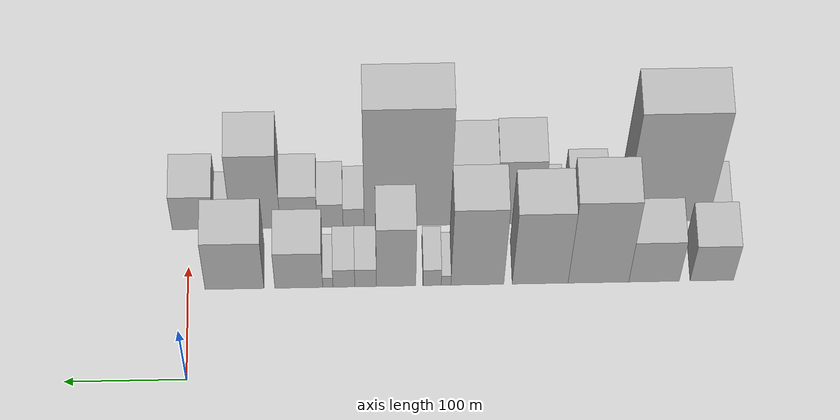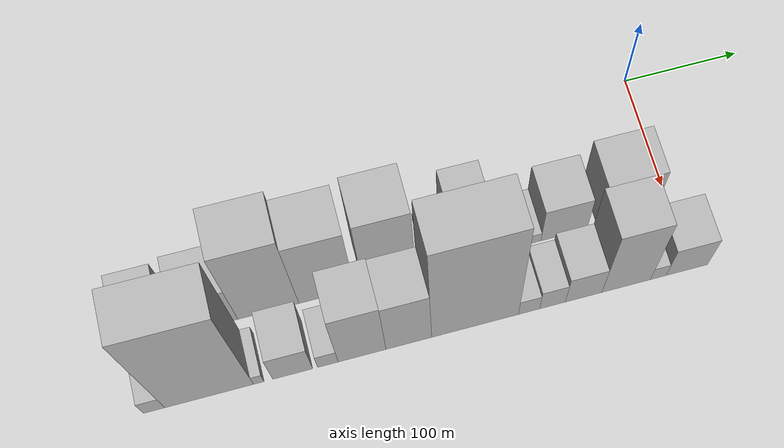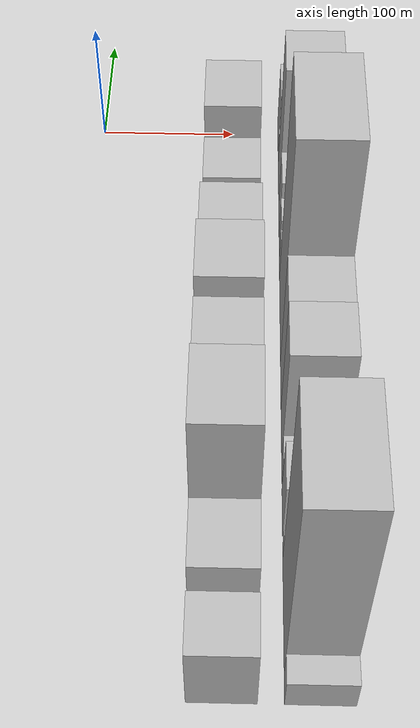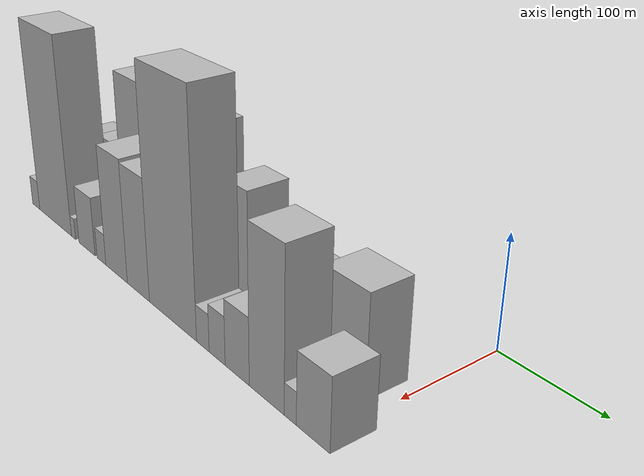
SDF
<sdf version="1.6">
 <world name="default">
  <model name="building_1">
   <static>1</static>
   <pose>100.0000 -432.0484 0 0.000000 0.000000 0.000000</pose>
   <link name="link">
    <pose>0 0 33.00 0 0 0</pose>
    <collision name="collision"><geometry><box><size>40.0000 35.9032 66.0000</size></box></geometry></collision>
    <visual name="visual">
     <cast_shadows>0</cast_shadows>
     <geometry><box><size>40.0000 35.9032 66.0000</size></box></geometry>
     <material>
      <script>
       <uri>model://HANNAS_wall/materials/scripts</uri>
       <uri>model://HANNAS_wall/materials/textures</uri>
       <name>vrc/HANNAS_wall</name>
      </script>
     </material>
    </visual>
   </link>
  </model>
  <model name="building_2">
   <static>1</static>
   <pose>100.0000 -384.2388 0 0.000000 0.000000 0.000000</pose>
   <link name="link">
    <pose>0 0 37.50 0 0 0</pose>
    <collision name="collision"><geometry><box><size>40.0000 41.7160 75.0000</size></box></geometry></collision>
    <visual name="visual">
     <cast_shadows>0</cast_shadows>
     <geometry><box><size>40.0000 41.7160 75.0000</size></box></geometry>
     <material>
      <script>
       <uri>model://HANNAS_wall/materials/scripts</uri>
       <uri>model://HANNAS_wall/materials/textures</uri>
       <name>vrc/HANNAS_wall</name>
      </script>
     </material>
    </visual>
   </link>
  </model>
  <model name="building_3">
   <static>1</static>
   <pose>100.0000 -338.3194 0 0.000000 0.000000 0.000000</pose>
   <link name="link">
    <pose>0 0 75.00 0 0 0</pose>
    <collision name="collision"><geometry><box><size>40.0000 50.1228 150.0000</size></box></geometry></collision>
    <visual name="visual">
     <cast_shadows>0</cast_shadows>
     <geometry><box><size>40.0000 50.1228 150.0000</size></box></geometry>
     <material>
      <script>
       <uri>model://HANNAS_wall/materials/scripts</uri>
       <uri>model://HANNAS_wall/materials/textures</uri>
       <name>vrc/HANNAS_wall</name>
      </script>
     </material>
    </visual>
   </link>
  </model>
  <model name="building_4">
   <static>1</static>
   <pose>100.0000 -290.1921 0 0.000000 0.000000 0.000000</pose>
   <link name="link">
    <pose>0 0 66.00 0 0 0</pose>
    <collision name="collision"><geometry><box><size>40.0000 46.1318 132.0000</size></box></geometry></collision>
    <visual name="visual">
     <cast_shadows>0</cast_shadows>
     <geometry><box><size>40.0000 46.1318 132.0000</size></box></geometry>
     <material>
      <script>
       <uri>model://HANNAS_wall/materials/scripts</uri>
       <uri>model://HANNAS_wall/materials/textures</uri>
       <name>vrc/HANNAS_wall</name>
      </script>
     </material>
    </visual>
   </link>
  </model>
  <model name="building_5">
   <static>1</static>
   <pose>100.0000 -238.3165 0 0.000000 0.000000 0.000000</pose>
   <link name="link">
    <pose>0 0 70.50 0 0 0</pose>
    <collision name="collision"><geometry><box><size>40.0000 43.6195 141.0000</size></box></geometry></collision>
    <visual name="visual">
     <cast_shadows>0</cast_shadows>
     <geometry><box><size>40.0000 43.6195 141.0000</size></box></geometry>
     <material>
      <script>
       <uri>model://HANNAS_wall/materials/scripts</uri>
       <uri>model://HANNAS_wall/materials/textures</uri>
       <name>vrc/HANNAS_wall</name>
      </script>
     </material>
    </visual>
   </link>
  </model>
  <model name="building_6">
   <static>1</static>
   <pose>100.0000 -212.5208 0 0.000000 0.000000 0.000000</pose>
   <link name="link">
    <pose>0 0 9.00 0 0 0</pose>
    <collision name="collision"><geometry><box><size>40.0000 7.9718 18.0000</size></box></geometry></collision>
    <visual name="visual">
     <cast_shadows>0</cast_shadows>
     <geometry><box><size>40.0000 7.9718 18.0000</size></box></geometry>
     <material>
      <script>
       <uri>model://HANNAS_wall/materials/scripts</uri>
       <uri>model://HANNAS_wall/materials/textures</uri>
       <name>vrc/HANNAS_wall</name>
      </script>
     </material>
    </visual>
   </link>
  </model>
  <model name="building_7">
   <static>1</static>
   <pose>100.0000 -200.9967 0 0.000000 0.000000 0.000000</pose>
   <link name="link">
    <pose>0 0 15.00 0 0 0</pose>
    <collision name="collision"><geometry><box><size>40.0000 15.0765 30.0000</size></box></geometry></collision>
    <visual name="visual">
     <cast_shadows>0</cast_shadows>
     <geometry><box><size>40.0000 15.0765 30.0000</size></box></geometry>
     <material>
      <script>
       <uri>model://HANNAS_wall/materials/scripts</uri>
       <uri>model://HANNAS_wall/materials/textures</uri>
       <name>vrc/HANNAS_wall</name>
      </script>
     </material>
    </visual>
   </link>
  </model>
  <model name="building_8">
   <static>1</static>
   <pose>100.0000 -171.2387 0 0.000000 0.000000 0.000000</pose>
   <link name="link">
    <pose>0 0 54.00 0 0 0</pose>
    <collision name="collision"><geometry><box><size>40.0000 32.4394 108.0000</size></box></geometry></collision>
    <visual name="visual">
     <cast_shadows>0</cast_shadows>
     <geometry><box><size>40.0000 32.4394 108.0000</size></box></geometry>
     <material>
      <script>
       <uri>model://HANNAS_wall/materials/scripts</uri>
       <uri>model://HANNAS_wall/materials/textures</uri>
       <name>vrc/HANNAS_wall</name>
      </script>
     </material>
    </visual>
   </link>
  </model>
  <model name="building_9">
   <static>1</static>
   <pose>100.0000 -146.1011 0 0.000000 0.000000 0.000000</pose>
   <link name="link">
    <pose>0 0 16.50 0 0 0</pose>
    <collision name="collision"><geometry><box><size>40.0000 17.8359 33.0000</size></box></geometry></collision>
    <visual name="visual">
     <cast_shadows>0</cast_shadows>
     <geometry><box><size>40.0000 17.8359 33.0000</size></box></geometry>
     <material>
      <script>
       <uri>model://HANNAS_wall/materials/scripts</uri>
       <uri>model://HANNAS_wall/materials/textures</uri>
       <name>vrc/HANNAS_wall</name>
      </script>
     </material>
    </visual>
   </link>
  </model>
  <model name="building_10">
   <static>1</static>
   <pose>100.0000 -128.2102 0 0.000000 0.000000 0.000000</pose>
   <link name="link">
    <pose>0 0 16.50 0 0 0</pose>
    <collision name="collision"><geometry><box><size>40.0000 17.9459 33.0000</size></box></geometry></collision>
    <visual name="visual">
     <cast_shadows>0</cast_shadows>
     <geometry><box><size>40.0000 17.9459 33.0000</size></box></geometry>
     <material>
      <script>
       <uri>model://HANNAS_wall/materials/scripts</uri>
       <uri>model://HANNAS_wall/materials/textures</uri>
       <name>vrc/HANNAS_wall</name>
      </script>
     </material>
    </visual>
   </link>
  </model>
  <model name="building_11">
   <static>1</static>
   <pose>100.0000 -115.0051 0 0.000000 0.000000 0.000000</pose>
   <link name="link">
    <pose>0 0 9.00 0 0 0</pose>
    <collision name="collision"><geometry><box><size>40.0000 8.4643 18.0000</size></box></geometry></collision>
    <visual name="visual">
     <cast_shadows>0</cast_shadows>
     <geometry><box><size>40.0000 8.4643 18.0000</size></box></geometry>
     <material>
      <script>
       <uri>model://HANNAS_wall/materials/scripts</uri>
       <uri>model://HANNAS_wall/materials/textures</uri>
       <name>vrc/HANNAS_wall</name>
      </script>
     </material>
    </visual>
   </link>
  </model>
  <model name="building_12">
   <static>1</static>
   <pose>100.0000 -91.0489 0 0.000000 0.000000 0.000000</pose>
   <link name="link">
    <pose>0 0 33.00 0 0 0</pose>
    <collision name="collision"><geometry><box><size>40.0000 39.4481 66.0000</size></box></geometry></collision>
    <visual name="visual">
     <cast_shadows>0</cast_shadows>
     <geometry><box><size>40.0000 39.4481 66.0000</size></box></geometry>
     <material>
      <script>
       <uri>model://HANNAS_wall/materials/scripts</uri>
       <uri>model://HANNAS_wall/materials/textures</uri>
       <name>vrc/HANNAS_wall</name>
      </script>
     </material>
    </visual>
   </link>
  </model>
  <model name="building_13">
   <static>1</static>
   <pose>100.0000 -38.0263 0 0.000000 0.000000 0.000000</pose>
   <link name="link">
    <pose>0 0 43.50 0 0 0</pose>
    <collision name="collision"><geometry><box><size>40.0000 48.5972 87.0000</size></box></geometry></collision>
    <visual name="visual">
     <cast_shadows>0</cast_shadows>
     <geometry><box><size>40.0000 48.5972 87.0000</size></box></geometry>
     <material>
      <script>
       <uri>model://HANNAS_wall/materials/scripts</uri>
       <uri>model://HANNAS_wall/materials/textures</uri>
       <name>vrc/HANNAS_wall</name>
      </script>
     </material>
    </visual>
   </link>
  </model>
  <model name="building_26">
   <static>1</static>
   <pose>155.0000 -441.6028 0 0.000000 0.000000 0.000000</pose>
   <link name="link">
    <pose>0 0 15.00 0 0 0</pose>
    <collision name="collision"><geometry><box><size>40.0000 16.7943 30.0000</size></box></geometry></collision>
    <visual name="visual">
     <cast_shadows>0</cast_shadows>
     <geometry><box><size>40.0000 16.7943 30.0000</size></box></geometry>
     <material>
      <script>
       <uri>model://HANNAS_wall/materials/scripts</uri>
       <uri>model://HANNAS_wall/materials/textures</uri>
       <name>vrc/HANNAS_wall</name>
      </script>
     </material>
    </visual>
   </link>
  </model>
  <model name="building_27">
   <static>1</static>
   <pose>155.0000 -397.8201 0 0.000000 0.000000 0.000000</pose>
   <link name="link">
    <pose>0 0 96.00 0 0 0</pose>
    <collision name="collision"><geometry><box><size>40.0000 70.7711 192.0000</size></box></geometry></collision>
    <visual name="visual">
     <cast_shadows>0</cast_shadows>
     <geometry><box><size>40.0000 70.7711 192.0000</size></box></geometry>
     <material>
      <script>
       <uri>model://HANNAS_wall/materials/scripts</uri>
       <uri>model://HANNAS_wall/materials/textures</uri>
       <name>vrc/HANNAS_wall</name>
      </script>
     </material>
    </visual>
   </link>
  </model>
  <model name="building_28">
   <static>1</static>
   <pose>155.0000 -358.2051 0 0.000000 0.000000 0.000000</pose>
   <link name="link">
    <pose>0 0 10.50 0 0 0</pose>
    <collision name="collision"><geometry><box><size>40.0000 8.4590 21.0000</size></box></geometry></collision>
    <visual name="visual">
     <cast_shadows>0</cast_shadows>
     <geometry><box><size>40.0000 8.4590 21.0000</size></box></geometry>
     <material>
      <script>
       <uri>model://HANNAS_wall/materials/scripts</uri>
       <uri>model://HANNAS_wall/materials/textures</uri>
       <name>vrc/HANNAS_wall</name>
      </script>
     </material>
    </visual>
   </link>
  </model>
  <model name="building_29">
   <static>1</static>
   <pose>155.0000 -330.8779 0 0.000000 0.000000 0.000000</pose>
   <link name="link">
    <pose>0 0 28.50 0 0 0</pose>
    <collision name="collision"><geometry><box><size>40.0000 32.1955 57.0000</size></box></geometry></collision>
    <visual name="visual">
     <cast_shadows>0</cast_shadows>
     <geometry><box><size>40.0000 32.1955 57.0000</size></box></geometry>
     <material>
      <script>
       <uri>model://HANNAS_wall/materials/scripts</uri>
       <uri>model://HANNAS_wall/materials/textures</uri>
       <name>vrc/HANNAS_wall</name>
      </script>
     </material>
    </visual>
   </link>
  </model>
  <model name="building_30">
   <static>1</static>
   <pose>155.0000 -302.4395 0 0.000000 0.000000 0.000000</pose>
   <link name="link">
    <pose>0 0 15.00 0 0 0</pose>
    <collision name="collision"><geometry><box><size>40.0000 16.6812 30.0000</size></box></geometry></collision>
    <visual name="visual">
     <cast_shadows>0</cast_shadows>
     <geometry><box><size>40.0000 16.6812 30.0000</size></box></geometry>
     <material>
      <script>
       <uri>model://HANNAS_wall/materials/scripts</uri>
       <uri>model://HANNAS_wall/materials/textures</uri>
       <name>vrc/HANNAS_wall</name>
      </script>
     </material>
    </visual>
   </link>
  </model>
  <model name="building_31">
   <static>1</static>
   <pose>155.0000 -274.6163 0 0.000000 0.000000 0.000000</pose>
   <link name="link">
    <pose>0 0 57.00 0 0 0</pose>
    <collision name="collision"><geometry><box><size>40.0000 38.9651 114.0000</size></box></geometry></collision>
    <visual name="visual">
     <cast_shadows>0</cast_shadows>
     <geometry><box><size>40.0000 38.9651 114.0000</size></box></geometry>
     <material>
      <script>
       <uri>model://HANNAS_wall/materials/scripts</uri>
       <uri>model://HANNAS_wall/materials/textures</uri>
       <name>vrc/HANNAS_wall</name>
      </script>
     </material>
    </visual>
   </link>
  </model>
  <model name="building_32">
   <static>1</static>
   <pose>155.0000 -236.4197 0 0.000000 0.000000 0.000000</pose>
   <link name="link">
    <pose>0 0 55.50 0 0 0</pose>
    <collision name="collision"><geometry><box><size>40.0000 37.4281 111.0000</size></box></geometry></collision>
    <visual name="visual">
     <cast_shadows>0</cast_shadows>
     <geometry><box><size>40.0000 37.4281 111.0000</size></box></geometry>
     <material>
      <script>
       <uri>model://HANNAS_wall/materials/scripts</uri>
       <uri>model://HANNAS_wall/materials/textures</uri>
       <name>vrc/HANNAS_wall</name>
      </script>
     </material>
    </visual>
   </link>
  </model>
  <model name="building_33">
   <static>1</static>
   <pose>155.0000 -181.7730 0 0.000000 0.000000 0.000000</pose>
   <link name="link">
    <pose>0 0 103.50 0 0 0</pose>
    <collision name="collision"><geometry><box><size>40.0000 71.8654 207.0000</size></box></geometry></collision>
    <visual name="visual">
     <cast_shadows>0</cast_shadows>
     <geometry><box><size>40.0000 71.8654 207.0000</size></box></geometry>
     <material>
      <script>
       <uri>model://HANNAS_wall/materials/scripts</uri>
       <uri>model://HANNAS_wall/materials/textures</uri>
       <name>vrc/HANNAS_wall</name>
      </script>
     </material>
    </visual>
   </link>
  </model>
  <model name="building_34">
   <static>1</static>
   <pose>155.0000 -137.0189 0 0.000000 0.000000 0.000000</pose>
   <link name="link">
    <pose>0 0 16.50 0 0 0</pose>
    <collision name="collision"><geometry><box><size>40.0000 17.6427 33.0000</size></box></geometry></collision>
    <visual name="visual">
     <cast_shadows>0</cast_shadows>
     <geometry><box><size>40.0000 17.6427 33.0000</size></box></geometry>
     <material>
      <script>
       <uri>model://HANNAS_wall/materials/scripts</uri>
       <uri>model://HANNAS_wall/materials/textures</uri>
       <name>vrc/HANNAS_wall</name>
      </script>
     </material>
    </visual>
   </link>
  </model>
  <model name="building_35">
   <static>1</static>
   <pose>155.0000 -117.4254 0 0.000000 0.000000 0.000000</pose>
   <link name="link">
    <pose>0 0 21.00 0 0 0</pose>
    <collision name="collision"><geometry><box><size>40.0000 21.5443 42.0000</size></box></geometry></collision>
    <visual name="visual">
     <cast_shadows>0</cast_shadows>
     <geometry><box><size>40.0000 21.5443 42.0000</size></box></geometry>
     <material>
      <script>
       <uri>model://HANNAS_wall/materials/scripts</uri>
       <uri>model://HANNAS_wall/materials/textures</uri>
       <name>vrc/HANNAS_wall</name>
      </script>
     </material>
    </visual>
   </link>
  </model>
  <model name="building_36">
   <static>1</static>
   <pose>155.0000 -91.2971 0 0.000000 0.000000 0.000000</pose>
   <link name="link">
    <pose>0 0 28.50 0 0 0</pose>
    <collision name="collision"><geometry><box><size>40.0000 30.7123 57.0000</size></box></geometry></collision>
    <visual name="visual">
     <cast_shadows>0</cast_shadows>
     <geometry><box><size>40.0000 30.7123 57.0000</size></box></geometry>
     <material>
      <script>
       <uri>model://HANNAS_wall/materials/scripts</uri>
       <uri>model://HANNAS_wall/materials/textures</uri>
       <name>vrc/HANNAS_wall</name>
      </script>
     </material>
    </visual>
   </link>
  </model>
  <model name="building_37">
   <static>1</static>
   <pose>155.0000 -55.3726 0 0.000000 0.000000 0.000000</pose>
   <link name="link">
    <pose>0 0 66.00 0 0 0</pose>
    <collision name="collision"><geometry><box><size>40.0000 41.1367 132.0000</size></box></geometry></collision>
    <visual name="visual">
     <cast_shadows>0</cast_shadows>
     <geometry><box><size>40.0000 41.1367 132.0000</size></box></geometry>
     <material>
      <script>
       <uri>model://HANNAS_wall/materials/scripts</uri>
       <uri>model://HANNAS_wall/materials/textures</uri>
       <name>vrc/HANNAS_wall</name>
      </script>
     </material>
    </visual>
   </link>
  </model>
  <model name="building_38">
   <static>1</static>
   <pose>155.0000 -28.1256 0 0.000000 0.000000 0.000000</pose>
   <link name="link">
    <pose>0 0 13.50 0 0 0</pose>
    <collision name="collision"><geometry><box><size>40.0000 13.3572 27.0000</size></box></geometry></collision>
    <visual name="visual">
     <cast_shadows>0</cast_shadows>
     <geometry><box><size>40.0000 13.3572 27.0000</size></box></geometry>
     <material>
      <script>
       <uri>model://HANNAS_wall/materials/scripts</uri>
       <uri>model://HANNAS_wall/materials/textures</uri>
       <name>vrc/HANNAS_wall</name>
      </script>
     </material>
    </visual>
   </link>
  </model>
  <model name="building_39">
   <static>1</static>
   <pose>155.0000 -3.6810 0 0.000000 0.000000 0.000000</pose>
   <link name="link">
    <pose>0 0 30.00 0 0 0</pose>
    <collision name="collision"><geometry><box><size>40.0000 35.5319 60.0000</size></box></geometry></collision>
    <visual name="visual">
     <cast_shadows>0</cast_shadows>
     <geometry><box><size>40.0000 35.5319 60.0000</size></box></geometry>
     <material>
      <script>
       <uri>model://HANNAS_wall/materials/scripts</uri>
       <uri>model://HANNAS_wall/materials/textures</uri>
       <name>vrc/HANNAS_wall</name>
      </script>
     </material>
    </visual>
   </link>
  </model>
 </world>
</sdf>
